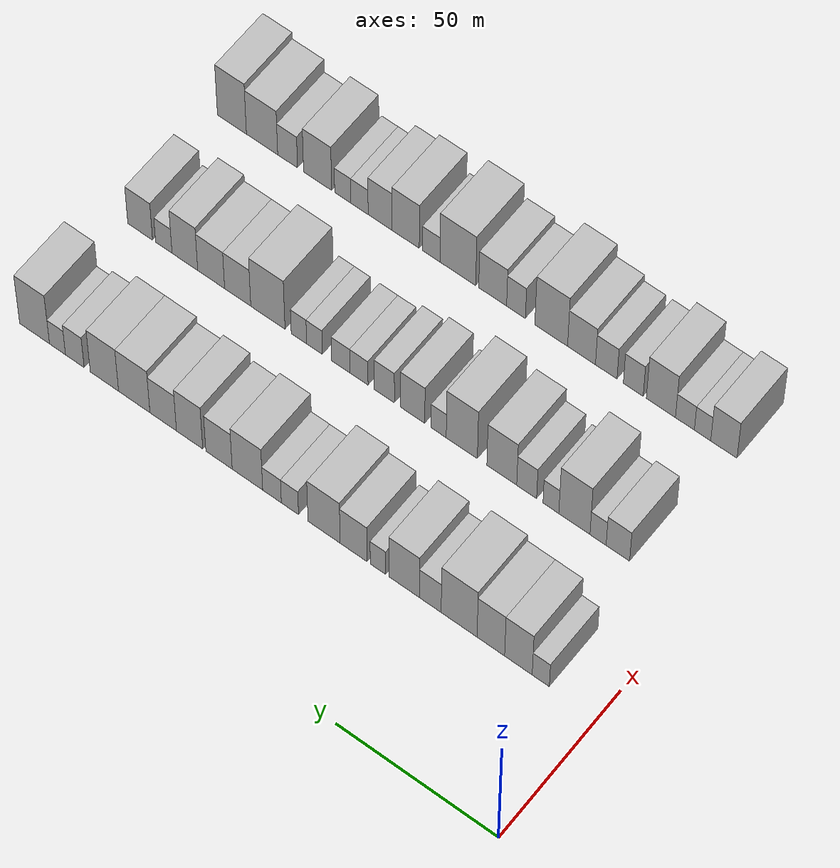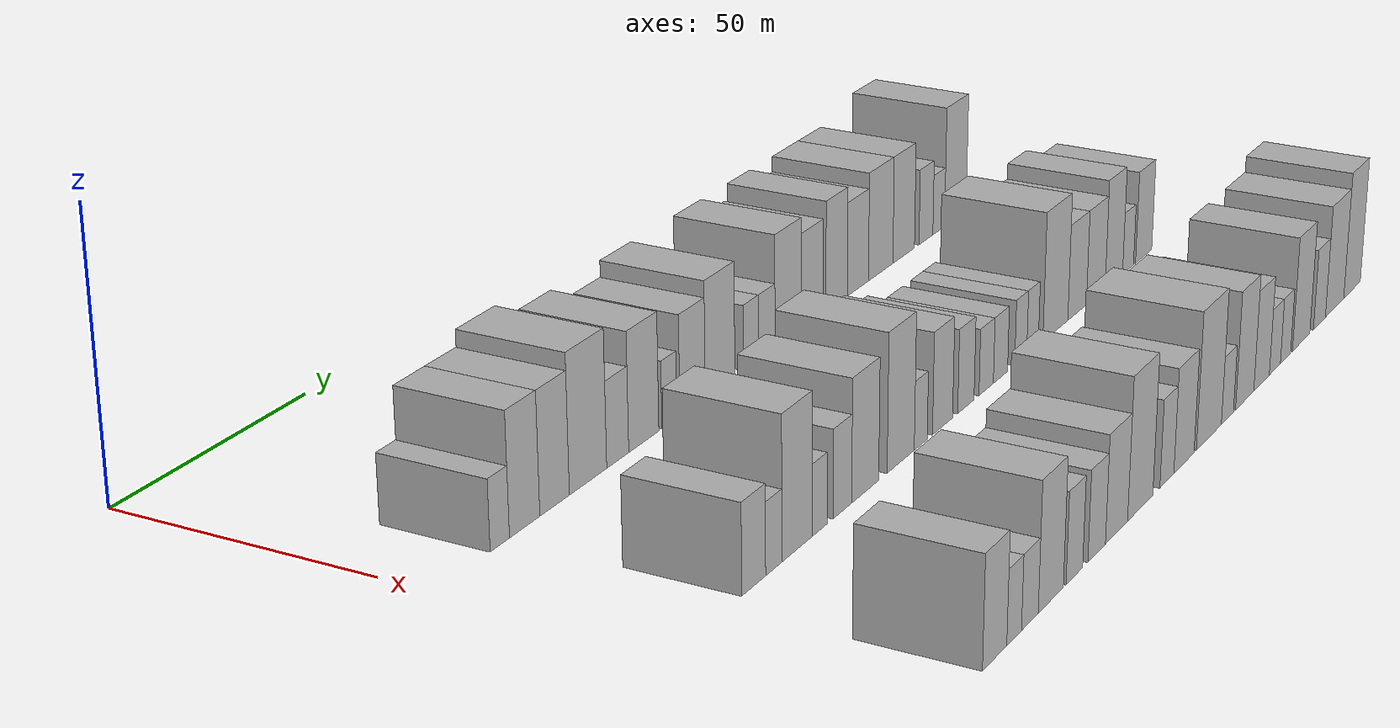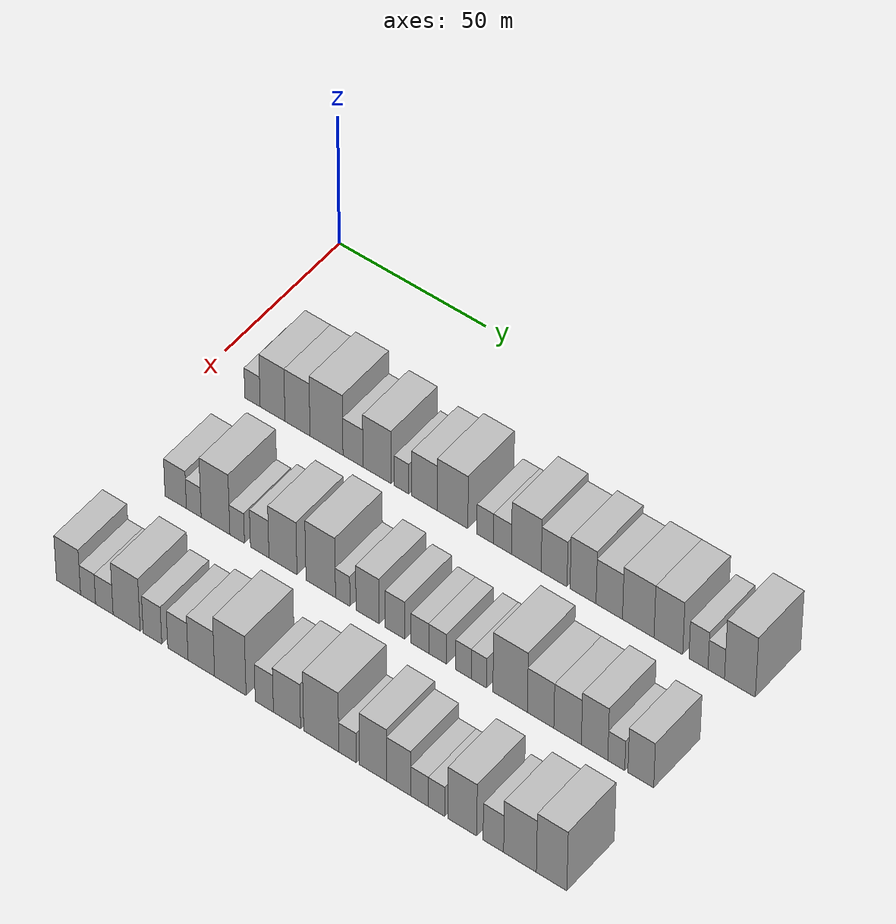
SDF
<sdf version="1.6">
 <world name="default">
  <model name="building_43">
   <static>1</static>
   <pose>50.0000 17.3146 0 0.000000 0.000000 0.000000</pose>
   <link name="link">
    <pose>0 0 6.00 0 0 0</pose>
    <collision name="collision"><geometry><box><size>20.0000 5.2675 12.0000</size></box></geometry></collision>
    <visual name="visual">
     <cast_shadows>0</cast_shadows>
     <geometry><box><size>20.0000 5.2675 12.0000</size></box></geometry>
     <material>
      <script>
       <uri>model://HANNAS_wall/materials/scripts</uri>
       <uri>model://HANNAS_wall/materials/textures</uri>
       <name>vrc/HANNAS_wall</name>
      </script>
     </material>
    </visual>
   </link>
  </model>
  <model name="building_44">
   <static>1</static>
   <pose>50.0000 24.1969 0 0.000000 0.000000 0.000000</pose>
   <link name="link">
    <pose>0 0 10.50 0 0 0</pose>
    <collision name="collision"><geometry><box><size>20.0000 8.4972 21.0000</size></box></geometry></collision>
    <visual name="visual">
     <cast_shadows>0</cast_shadows>
     <geometry><box><size>20.0000 8.4972 21.0000</size></box></geometry>
     <material>
      <script>
       <uri>model://HANNAS_wall/materials/scripts</uri>
       <uri>model://HANNAS_wall/materials/textures</uri>
       <name>vrc/HANNAS_wall</name>
      </script>
     </material>
    </visual>
   </link>
  </model>
  <model name="building_45">
   <static>1</static>
   <pose>50.0000 32.7116 0 0.000000 0.000000 0.000000</pose>
   <link name="link">
    <pose>0 0 10.50 0 0 0</pose>
    <collision name="collision"><geometry><box><size>20.0000 8.5323 21.0000</size></box></geometry></collision>
    <visual name="visual">
     <cast_shadows>0</cast_shadows>
     <geometry><box><size>20.0000 8.5323 21.0000</size></box></geometry>
     <material>
      <script>
       <uri>model://HANNAS_wall/materials/scripts</uri>
       <uri>model://HANNAS_wall/materials/textures</uri>
       <name>vrc/HANNAS_wall</name>
      </script>
     </material>
    </visual>
   </link>
  </model>
  <model name="building_46">
   <static>1</static>
   <pose>50.0000 42.5591 0 0.000000 0.000000 0.000000</pose>
   <link name="link">
    <pose>0 0 12.00 0 0 0</pose>
    <collision name="collision"><geometry><box><size>20.0000 11.1626 24.0000</size></box></geometry></collision>
    <visual name="visual">
     <cast_shadows>0</cast_shadows>
     <geometry><box><size>20.0000 11.1626 24.0000</size></box></geometry>
     <material>
      <script>
       <uri>model://HANNAS_wall/materials/scripts</uri>
       <uri>model://HANNAS_wall/materials/textures</uri>
       <name>vrc/HANNAS_wall</name>
      </script>
     </material>
    </visual>
   </link>
  </model>
  <model name="building_47">
   <static>1</static>
   <pose>50.0000 51.5305 0 0.000000 0.000000 0.000000</pose>
   <link name="link">
    <pose>0 0 7.50 0 0 0</pose>
    <collision name="collision"><geometry><box><size>20.0000 6.7802 15.0000</size></box></geometry></collision>
    <visual name="visual">
     <cast_shadows>0</cast_shadows>
     <geometry><box><size>20.0000 6.7802 15.0000</size></box></geometry>
     <material>
      <script>
       <uri>model://HANNAS_wall/materials/scripts</uri>
       <uri>model://HANNAS_wall/materials/textures</uri>
       <name>vrc/HANNAS_wall</name>
      </script>
     </material>
    </visual>
   </link>
  </model>
  <model name="building_48">
   <static>1</static>
   <pose>50.0000 59.6925 0 0.000000 0.000000 0.000000</pose>
   <link name="link">
    <pose>0 0 10.50 0 0 0</pose>
    <collision name="collision"><geometry><box><size>20.0000 9.5437 21.0000</size></box></geometry></collision>
    <visual name="visual">
     <cast_shadows>0</cast_shadows>
     <geometry><box><size>20.0000 9.5437 21.0000</size></box></geometry>
     <material>
      <script>
       <uri>model://HANNAS_wall/materials/scripts</uri>
       <uri>model://HANNAS_wall/materials/textures</uri>
       <name>vrc/HANNAS_wall</name>
      </script>
     </material>
    </visual>
   </link>
  </model>
  <model name="building_49">
   <static>1</static>
   <pose>50.0000 67.8998 0 0.000000 0.000000 0.000000</pose>
   <link name="link">
    <pose>0 0 6.00 0 0 0</pose>
    <collision name="collision"><geometry><box><size>20.0000 4.8709 12.0000</size></box></geometry></collision>
    <visual name="visual">
     <cast_shadows>0</cast_shadows>
     <geometry><box><size>20.0000 4.8709 12.0000</size></box></geometry>
     <material>
      <script>
       <uri>model://HANNAS_wall/materials/scripts</uri>
       <uri>model://HANNAS_wall/materials/textures</uri>
       <name>vrc/HANNAS_wall</name>
      </script>
     </material>
    </visual>
   </link>
  </model>
  <model name="building_50">
   <static>1</static>
   <pose>50.0000 75.5882 0 0.000000 0.000000 0.000000</pose>
   <link name="link">
    <pose>0 0 9.00 0 0 0</pose>
    <collision name="collision"><geometry><box><size>20.0000 8.5059 18.0000</size></box></geometry></collision>
    <visual name="visual">
     <cast_shadows>0</cast_shadows>
     <geometry><box><size>20.0000 8.5059 18.0000</size></box></geometry>
     <material>
      <script>
       <uri>model://HANNAS_wall/materials/scripts</uri>
       <uri>model://HANNAS_wall/materials/textures</uri>
       <name>vrc/HANNAS_wall</name>
      </script>
     </material>
    </visual>
   </link>
  </model>
  <model name="building_51">
   <static>1</static>
   <pose>50.0000 84.9459 0 0.000000 0.000000 0.000000</pose>
   <link name="link">
    <pose>0 0 10.50 0 0 0</pose>
    <collision name="collision"><geometry><box><size>20.0000 10.2094 21.0000</size></box></geometry></collision>
    <visual name="visual">
     <cast_shadows>0</cast_shadows>
     <geometry><box><size>20.0000 10.2094 21.0000</size></box></geometry>
     <material>
      <script>
       <uri>model://HANNAS_wall/materials/scripts</uri>
       <uri>model://HANNAS_wall/materials/textures</uri>
       <name>vrc/HANNAS_wall</name>
      </script>
     </material>
    </visual>
   </link>
  </model>
  <model name="building_52">
   <static>1</static>
   <pose>50.0000 95.7833 0 0.000000 0.000000 0.000000</pose>
   <link name="link">
    <pose>0 0 6.00 0 0 0</pose>
    <collision name="collision"><geometry><box><size>20.0000 5.4654 12.0000</size></box></geometry></collision>
    <visual name="visual">
     <cast_shadows>0</cast_shadows>
     <geometry><box><size>20.0000 5.4654 12.0000</size></box></geometry>
     <material>
      <script>
       <uri>model://HANNAS_wall/materials/scripts</uri>
       <uri>model://HANNAS_wall/materials/textures</uri>
       <name>vrc/HANNAS_wall</name>
      </script>
     </material>
    </visual>
   </link>
  </model>
  <model name="building_53">
   <static>1</static>
   <pose>50.0000 101.4940 0 0.000000 0.000000 0.000000</pose>
   <link name="link">
    <pose>0 0 6.00 0 0 0</pose>
    <collision name="collision"><geometry><box><size>20.0000 5.9561 12.0000</size></box></geometry></collision>
    <visual name="visual">
     <cast_shadows>0</cast_shadows>
     <geometry><box><size>20.0000 5.9561 12.0000</size></box></geometry>
     <material>
      <script>
       <uri>model://HANNAS_wall/materials/scripts</uri>
       <uri>model://HANNAS_wall/materials/textures</uri>
       <name>vrc/HANNAS_wall</name>
      </script>
     </material>
    </visual>
   </link>
  </model>
  <model name="building_54">
   <static>1</static>
   <pose>50.0000 109.3592 0 0.000000 0.000000 0.000000</pose>
   <link name="link">
    <pose>0 0 10.50 0 0 0</pose>
    <collision name="collision"><geometry><box><size>20.0000 9.7743 21.0000</size></box></geometry></collision>
    <visual name="visual">
     <cast_shadows>0</cast_shadows>
     <geometry><box><size>20.0000 9.7743 21.0000</size></box></geometry>
     <material>
      <script>
       <uri>model://HANNAS_wall/materials/scripts</uri>
       <uri>model://HANNAS_wall/materials/textures</uri>
       <name>vrc/HANNAS_wall</name>
      </script>
     </material>
    </visual>
   </link>
  </model>
  <model name="building_55">
   <static>1</static>
   <pose>50.0000 118.4897 0 0.000000 0.000000 0.000000</pose>
   <link name="link">
    <pose>0 0 9.00 0 0 0</pose>
    <collision name="collision"><geometry><box><size>20.0000 8.4868 18.0000</size></box></geometry></collision>
    <visual name="visual">
     <cast_shadows>0</cast_shadows>
     <geometry><box><size>20.0000 8.4868 18.0000</size></box></geometry>
     <material>
      <script>
       <uri>model://HANNAS_wall/materials/scripts</uri>
       <uri>model://HANNAS_wall/materials/textures</uri>
       <name>vrc/HANNAS_wall</name>
      </script>
     </material>
    </visual>
   </link>
  </model>
  <model name="building_56">
   <static>1</static>
   <pose>50.0000 127.9773 0 0.000000 0.000000 0.000000</pose>
   <link name="link">
    <pose>0 0 10.50 0 0 0</pose>
    <collision name="collision"><geometry><box><size>20.0000 8.4884 21.0000</size></box></geometry></collision>
    <visual name="visual">
     <cast_shadows>0</cast_shadows>
     <geometry><box><size>20.0000 8.4884 21.0000</size></box></geometry>
     <material>
      <script>
       <uri>model://HANNAS_wall/materials/scripts</uri>
       <uri>model://HANNAS_wall/materials/textures</uri>
       <name>vrc/HANNAS_wall</name>
      </script>
     </material>
    </visual>
   </link>
  </model>
  <model name="building_57">
   <static>1</static>
   <pose>50.0000 136.5265 0 0.000000 0.000000 0.000000</pose>
   <link name="link">
    <pose>0 0 9.00 0 0 0</pose>
    <collision name="collision"><geometry><box><size>20.0000 8.6100 18.0000</size></box></geometry></collision>
    <visual name="visual">
     <cast_shadows>0</cast_shadows>
     <geometry><box><size>20.0000 8.6100 18.0000</size></box></geometry>
     <material>
      <script>
       <uri>model://HANNAS_wall/materials/scripts</uri>
       <uri>model://HANNAS_wall/materials/textures</uri>
       <name>vrc/HANNAS_wall</name>
      </script>
     </material>
    </visual>
   </link>
  </model>
  <model name="building_58">
   <static>1</static>
   <pose>50.0000 145.9409 0 0.000000 0.000000 0.000000</pose>
   <link name="link">
    <pose>0 0 10.50 0 0 0</pose>
    <collision name="collision"><geometry><box><size>20.0000 10.2188 21.0000</size></box></geometry></collision>
    <visual name="visual">
     <cast_shadows>0</cast_shadows>
     <geometry><box><size>20.0000 10.2188 21.0000</size></box></geometry>
     <material>
      <script>
       <uri>model://HANNAS_wall/materials/scripts</uri>
       <uri>model://HANNAS_wall/materials/textures</uri>
       <name>vrc/HANNAS_wall</name>
      </script>
     </material>
    </visual>
   </link>
  </model>
  <model name="building_59">
   <static>1</static>
   <pose>50.0000 155.6911 0 0.000000 0.000000 0.000000</pose>
   <link name="link">
    <pose>0 0 10.50 0 0 0</pose>
    <collision name="collision"><geometry><box><size>20.0000 9.2816 21.0000</size></box></geometry></collision>
    <visual name="visual">
     <cast_shadows>0</cast_shadows>
     <geometry><box><size>20.0000 9.2816 21.0000</size></box></geometry>
     <material>
      <script>
       <uri>model://HANNAS_wall/materials/scripts</uri>
       <uri>model://HANNAS_wall/materials/textures</uri>
       <name>vrc/HANNAS_wall</name>
      </script>
     </material>
    </visual>
   </link>
  </model>
  <model name="building_60">
   <static>1</static>
   <pose>50.0000 165.3964 0 0.000000 0.000000 0.000000</pose>
   <link name="link">
    <pose>0 0 7.50 0 0 0</pose>
    <collision name="collision"><geometry><box><size>20.0000 6.1289 15.0000</size></box></geometry></collision>
    <visual name="visual">
     <cast_shadows>0</cast_shadows>
     <geometry><box><size>20.0000 6.1289 15.0000</size></box></geometry>
     <material>
      <script>
       <uri>model://HANNAS_wall/materials/scripts</uri>
       <uri>model://HANNAS_wall/materials/textures</uri>
       <name>vrc/HANNAS_wall</name>
      </script>
     </material>
    </visual>
   </link>
  </model>
  <model name="building_61">
   <static>1</static>
   <pose>50.0000 171.0979 0 0.000000 0.000000 0.000000</pose>
   <link name="link">
    <pose>0 0 6.00 0 0 0</pose>
    <collision name="collision"><geometry><box><size>20.0000 5.2742 12.0000</size></box></geometry></collision>
    <visual name="visual">
     <cast_shadows>0</cast_shadows>
     <geometry><box><size>20.0000 5.2742 12.0000</size></box></geometry>
     <material>
      <script>
       <uri>model://HANNAS_wall/materials/scripts</uri>
       <uri>model://HANNAS_wall/materials/textures</uri>
       <name>vrc/HANNAS_wall</name>
      </script>
     </material>
    </visual>
   </link>
  </model>
  <model name="building_62">
   <static>1</static>
   <pose>50.0000 178.6710 0 0.000000 0.000000 0.000000</pose>
   <link name="link">
    <pose>0 0 12.00 0 0 0</pose>
    <collision name="collision"><geometry><box><size>20.0000 9.8719 24.0000</size></box></geometry></collision>
    <visual name="visual">
     <cast_shadows>0</cast_shadows>
     <geometry><box><size>20.0000 9.8719 24.0000</size></box></geometry>
     <material>
      <script>
       <uri>model://HANNAS_wall/materials/scripts</uri>
       <uri>model://HANNAS_wall/materials/textures</uri>
       <name>vrc/HANNAS_wall</name>
      </script>
     </material>
    </visual>
   </link>
  </model>
  <model name="building_123">
   <static>1</static>
   <pose>90.0000 23.2948 0 0.000000 0.000000 0.000000</pose>
   <link name="link">
    <pose>0 0 7.50 0 0 0</pose>
    <collision name="collision"><geometry><box><size>20.0000 7.2804 15.0000</size></box></geometry></collision>
    <visual name="visual">
     <cast_shadows>0</cast_shadows>
     <geometry><box><size>20.0000 7.2804 15.0000</size></box></geometry>
     <material>
      <script>
       <uri>model://HANNAS_wall/materials/scripts</uri>
       <uri>model://HANNAS_wall/materials/textures</uri>
       <name>vrc/HANNAS_wall</name>
      </script>
     </material>
    </visual>
   </link>
  </model>
  <model name="building_124">
   <static>1</static>
   <pose>90.0000 29.4414 0 0.000000 0.000000 0.000000</pose>
   <link name="link">
    <pose>0 0 6.00 0 0 0</pose>
    <collision name="collision"><geometry><box><size>20.0000 5.0128 12.0000</size></box></geometry></collision>
    <visual name="visual">
     <cast_shadows>0</cast_shadows>
     <geometry><box><size>20.0000 5.0128 12.0000</size></box></geometry>
     <material>
      <script>
       <uri>model://HANNAS_wall/materials/scripts</uri>
       <uri>model://HANNAS_wall/materials/textures</uri>
       <name>vrc/HANNAS_wall</name>
      </script>
     </material>
    </visual>
   </link>
  </model>
  <model name="building_125">
   <static>1</static>
   <pose>90.0000 36.8077 0 0.000000 0.000000 0.000000</pose>
   <link name="link">
    <pose>0 0 12.00 0 0 0</pose>
    <collision name="collision"><geometry><box><size>20.0000 9.7198 24.0000</size></box></geometry></collision>
    <visual name="visual">
     <cast_shadows>0</cast_shadows>
     <geometry><box><size>20.0000 9.7198 24.0000</size></box></geometry>
     <material>
      <script>
       <uri>model://HANNAS_wall/materials/scripts</uri>
       <uri>model://HANNAS_wall/materials/textures</uri>
       <name>vrc/HANNAS_wall</name>
      </script>
     </material>
    </visual>
   </link>
  </model>
  <model name="building_126">
   <static>1</static>
   <pose>90.0000 44.1385 0 0.000000 0.000000 0.000000</pose>
   <link name="link">
    <pose>0 0 6.00 0 0 0</pose>
    <collision name="collision"><geometry><box><size>20.0000 4.9419 12.0000</size></box></geometry></collision>
    <visual name="visual">
     <cast_shadows>0</cast_shadows>
     <geometry><box><size>20.0000 4.9419 12.0000</size></box></geometry>
     <material>
      <script>
       <uri>model://HANNAS_wall/materials/scripts</uri>
       <uri>model://HANNAS_wall/materials/textures</uri>
       <name>vrc/HANNAS_wall</name>
      </script>
     </material>
    </visual>
   </link>
  </model>
  <model name="building_127">
   <static>1</static>
   <pose>90.0000 51.7272 0 0.000000 0.000000 0.000000</pose>
   <link name="link">
    <pose>0 0 7.50 0 0 0</pose>
    <collision name="collision"><geometry><box><size>20.0000 6.2356 15.0000</size></box></geometry></collision>
    <visual name="visual">
     <cast_shadows>0</cast_shadows>
     <geometry><box><size>20.0000 6.2356 15.0000</size></box></geometry>
     <material>
      <script>
       <uri>model://HANNAS_wall/materials/scripts</uri>
       <uri>model://HANNAS_wall/materials/textures</uri>
       <name>vrc/HANNAS_wall</name>
      </script>
     </material>
    </visual>
   </link>
  </model>
  <model name="building_128">
   <static>1</static>
   <pose>90.0000 59.5458 0 0.000000 0.000000 0.000000</pose>
   <link name="link">
    <pose>0 0 10.50 0 0 0</pose>
    <collision name="collision"><geometry><box><size>20.0000 9.4016 21.0000</size></box></geometry></collision>
    <visual name="visual">
     <cast_shadows>0</cast_shadows>
     <geometry><box><size>20.0000 9.4016 21.0000</size></box></geometry>
     <material>
      <script>
       <uri>model://HANNAS_wall/materials/scripts</uri>
       <uri>model://HANNAS_wall/materials/textures</uri>
       <name>vrc/HANNAS_wall</name>
      </script>
     </material>
    </visual>
   </link>
  </model>
  <model name="building_129">
   <static>1</static>
   <pose>90.0000 72.1770 0 0.000000 0.000000 0.000000</pose>
   <link name="link">
    <pose>0 0 12.00 0 0 0</pose>
    <collision name="collision"><geometry><box><size>20.0000 9.8608 24.0000</size></box></geometry></collision>
    <visual name="visual">
     <cast_shadows>0</cast_shadows>
     <geometry><box><size>20.0000 9.8608 24.0000</size></box></geometry>
     <material>
      <script>
       <uri>model://HANNAS_wall/materials/scripts</uri>
       <uri>model://HANNAS_wall/materials/textures</uri>
       <name>vrc/HANNAS_wall</name>
      </script>
     </material>
    </visual>
   </link>
  </model>
  <model name="building_130">
   <static>1</static>
   <pose>90.0000 79.5146 0 0.000000 0.000000 0.000000</pose>
   <link name="link">
    <pose>0 0 6.00 0 0 0</pose>
    <collision name="collision"><geometry><box><size>20.0000 4.8144 12.0000</size></box></geometry></collision>
    <visual name="visual">
     <cast_shadows>0</cast_shadows>
     <geometry><box><size>20.0000 4.8144 12.0000</size></box></geometry>
     <material>
      <script>
       <uri>model://HANNAS_wall/materials/scripts</uri>
       <uri>model://HANNAS_wall/materials/textures</uri>
       <name>vrc/HANNAS_wall</name>
      </script>
     </material>
    </visual>
   </link>
  </model>
  <model name="building_131">
   <static>1</static>
   <pose>90.0000 87.7689 0 0.000000 0.000000 0.000000</pose>
   <link name="link">
    <pose>0 0 9.00 0 0 0</pose>
    <collision name="collision"><geometry><box><size>20.0000 7.6941 18.0000</size></box></geometry></collision>
    <visual name="visual">
     <cast_shadows>0</cast_shadows>
     <geometry><box><size>20.0000 7.6941 18.0000</size></box></geometry>
     <material>
      <script>
       <uri>model://HANNAS_wall/materials/scripts</uri>
       <uri>model://HANNAS_wall/materials/textures</uri>
       <name>vrc/HANNAS_wall</name>
      </script>
     </material>
    </visual>
   </link>
  </model>
  <model name="building_132">
   <static>1</static>
   <pose>90.0000 96.8347 0 0.000000 0.000000 0.000000</pose>
   <link name="link">
    <pose>0 0 7.50 0 0 0</pose>
    <collision name="collision"><geometry><box><size>20.0000 6.4374 15.0000</size></box></geometry></collision>
    <visual name="visual">
     <cast_shadows>0</cast_shadows>
     <geometry><box><size>20.0000 6.4374 15.0000</size></box></geometry>
     <material>
      <script>
       <uri>model://HANNAS_wall/materials/scripts</uri>
       <uri>model://HANNAS_wall/materials/textures</uri>
       <name>vrc/HANNAS_wall</name>
      </script>
     </material>
    </visual>
   </link>
  </model>
  <model name="building_133">
   <static>1</static>
   <pose>90.0000 104.9692 0 0.000000 0.000000 0.000000</pose>
   <link name="link">
    <pose>0 0 6.00 0 0 0</pose>
    <collision name="collision"><geometry><box><size>20.0000 5.8316 12.0000</size></box></geometry></collision>
    <visual name="visual">
     <cast_shadows>0</cast_shadows>
     <geometry><box><size>20.0000 5.8316 12.0000</size></box></geometry>
     <material>
      <script>
       <uri>model://HANNAS_wall/materials/scripts</uri>
       <uri>model://HANNAS_wall/materials/textures</uri>
       <name>vrc/HANNAS_wall</name>
      </script>
     </material>
    </visual>
   </link>
  </model>
  <model name="building_134">
   <static>1</static>
   <pose>90.0000 110.8196 0 0.000000 0.000000 0.000000</pose>
   <link name="link">
    <pose>0 0 6.00 0 0 0</pose>
    <collision name="collision"><geometry><box><size>20.0000 5.8692 12.0000</size></box></geometry></collision>
    <visual name="visual">
     <cast_shadows>0</cast_shadows>
     <geometry><box><size>20.0000 5.8692 12.0000</size></box></geometry>
     <material>
      <script>
       <uri>model://HANNAS_wall/materials/scripts</uri>
       <uri>model://HANNAS_wall/materials/textures</uri>
       <name>vrc/HANNAS_wall</name>
      </script>
     </material>
    </visual>
   </link>
  </model>
  <model name="building_135">
   <static>1</static>
   <pose>90.0000 119.2998 0 0.000000 0.000000 0.000000</pose>
   <link name="link">
    <pose>0 0 6.00 0 0 0</pose>
    <collision name="collision"><geometry><box><size>20.0000 5.0912 12.0000</size></box></geometry></collision>
    <visual name="visual">
     <cast_shadows>0</cast_shadows>
     <geometry><box><size>20.0000 5.0912 12.0000</size></box></geometry>
     <material>
      <script>
       <uri>model://HANNAS_wall/materials/scripts</uri>
       <uri>model://HANNAS_wall/materials/textures</uri>
       <name>vrc/HANNAS_wall</name>
      </script>
     </material>
    </visual>
   </link>
  </model>
  <model name="building_136">
   <static>1</static>
   <pose>90.0000 124.3524 0 0.000000 0.000000 0.000000</pose>
   <link name="link">
    <pose>0 0 6.00 0 0 0</pose>
    <collision name="collision"><geometry><box><size>20.0000 5.0139 12.0000</size></box></geometry></collision>
    <visual name="visual">
     <cast_shadows>0</cast_shadows>
     <geometry><box><size>20.0000 5.0139 12.0000</size></box></geometry>
     <material>
      <script>
       <uri>model://HANNAS_wall/materials/scripts</uri>
       <uri>model://HANNAS_wall/materials/textures</uri>
       <name>vrc/HANNAS_wall</name>
      </script>
     </material>
    </visual>
   </link>
  </model>
  <model name="building_137">
   <static>1</static>
   <pose>90.0000 134.4356 0 0.000000 0.000000 0.000000</pose>
   <link name="link">
    <pose>0 0 12.00 0 0 0</pose>
    <collision name="collision"><geometry><box><size>20.0000 11.1525 24.0000</size></box></geometry></collision>
    <visual name="visual">
     <cast_shadows>0</cast_shadows>
     <geometry><box><size>20.0000 11.1525 24.0000</size></box></geometry>
     <material>
      <script>
       <uri>model://HANNAS_wall/materials/scripts</uri>
       <uri>model://HANNAS_wall/materials/textures</uri>
       <name>vrc/HANNAS_wall</name>
      </script>
     </material>
    </visual>
   </link>
  </model>
  <model name="building_138">
   <static>1</static>
   <pose>90.0000 144.2898 0 0.000000 0.000000 0.000000</pose>
   <link name="link">
    <pose>0 0 9.00 0 0 0</pose>
    <collision name="collision"><geometry><box><size>20.0000 8.5558 18.0000</size></box></geometry></collision>
    <visual name="visual">
     <cast_shadows>0</cast_shadows>
     <geometry><box><size>20.0000 8.5558 18.0000</size></box></geometry>
     <material>
      <script>
       <uri>model://HANNAS_wall/materials/scripts</uri>
       <uri>model://HANNAS_wall/materials/textures</uri>
       <name>vrc/HANNAS_wall</name>
      </script>
     </material>
    </visual>
   </link>
  </model>
  <model name="building_139">
   <static>1</static>
   <pose>90.0000 152.9894 0 0.000000 0.000000 0.000000</pose>
   <link name="link">
    <pose>0 0 9.00 0 0 0</pose>
    <collision name="collision"><geometry><box><size>20.0000 8.8433 18.0000</size></box></geometry></collision>
    <visual name="visual">
     <cast_shadows>0</cast_shadows>
     <geometry><box><size>20.0000 8.8433 18.0000</size></box></geometry>
     <material>
      <script>
       <uri>model://HANNAS_wall/materials/scripts</uri>
       <uri>model://HANNAS_wall/materials/textures</uri>
       <name>vrc/HANNAS_wall</name>
      </script>
     </material>
    </visual>
   </link>
  </model>
  <model name="building_140">
   <static>1</static>
   <pose>90.0000 161.6472 0 0.000000 0.000000 0.000000</pose>
   <link name="link">
    <pose>0 0 10.50 0 0 0</pose>
    <collision name="collision"><geometry><box><size>20.0000 8.4724 21.0000</size></box></geometry></collision>
    <visual name="visual">
     <cast_shadows>0</cast_shadows>
     <geometry><box><size>20.0000 8.4724 21.0000</size></box></geometry>
     <material>
      <script>
       <uri>model://HANNAS_wall/materials/scripts</uri>
       <uri>model://HANNAS_wall/materials/textures</uri>
       <name>vrc/HANNAS_wall</name>
      </script>
     </material>
    </visual>
   </link>
  </model>
  <model name="building_141">
   <static>1</static>
   <pose>90.0000 168.5991 0 0.000000 0.000000 0.000000</pose>
   <link name="link">
    <pose>0 0 6.00 0 0 0</pose>
    <collision name="collision"><geometry><box><size>20.0000 5.4315 12.0000</size></box></geometry></collision>
    <visual name="visual">
     <cast_shadows>0</cast_shadows>
     <geometry><box><size>20.0000 5.4315 12.0000</size></box></geometry>
     <material>
      <script>
       <uri>model://HANNAS_wall/materials/scripts</uri>
       <uri>model://HANNAS_wall/materials/textures</uri>
       <name>vrc/HANNAS_wall</name>
      </script>
     </material>
    </visual>
   </link>
  </model>
  <model name="building_142">
   <static>1</static>
   <pose>90.0000 176.4196 0 0.000000 0.000000 0.000000</pose>
   <link name="link">
    <pose>0 0 9.00 0 0 0</pose>
    <collision name="collision"><geometry><box><size>20.0000 8.2095 18.0000</size></box></geometry></collision>
    <visual name="visual">
     <cast_shadows>0</cast_shadows>
     <geometry><box><size>20.0000 8.2095 18.0000</size></box></geometry>
     <material>
      <script>
       <uri>model://HANNAS_wall/materials/scripts</uri>
       <uri>model://HANNAS_wall/materials/textures</uri>
       <name>vrc/HANNAS_wall</name>
      </script>
     </material>
    </visual>
   </link>
  </model>
  <model name="building_199">
   <static>1</static>
   <pose>130.0000 19.6393 0 0.000000 0.000000 0.000000</pose>
   <link name="link">
    <pose>0 0 9.00 0 0 0</pose>
    <collision name="collision"><geometry><box><size>20.0000 8.1835 18.0000</size></box></geometry></collision>
    <visual name="visual">
     <cast_shadows>0</cast_shadows>
     <geometry><box><size>20.0000 8.1835 18.0000</size></box></geometry>
     <material>
      <script>
       <uri>model://HANNAS_wall/materials/scripts</uri>
       <uri>model://HANNAS_wall/materials/textures</uri>
       <name>vrc/HANNAS_wall</name>
      </script>
     </material>
    </visual>
   </link>
  </model>
  <model name="building_200">
   <static>1</static>
   <pose>130.0000 26.2807 0 0.000000 0.000000 0.000000</pose>
   <link name="link">
    <pose>0 0 6.00 0 0 0</pose>
    <collision name="collision"><geometry><box><size>20.0000 5.0993 12.0000</size></box></geometry></collision>
    <visual name="visual">
     <cast_shadows>0</cast_shadows>
     <geometry><box><size>20.0000 5.0993 12.0000</size></box></geometry>
     <material>
      <script>
       <uri>model://HANNAS_wall/materials/scripts</uri>
       <uri>model://HANNAS_wall/materials/textures</uri>
       <name>vrc/HANNAS_wall</name>
      </script>
     </material>
    </visual>
   </link>
  </model>
  <model name="building_201">
   <static>1</static>
   <pose>130.0000 31.7834 0 0.000000 0.000000 0.000000</pose>
   <link name="link">
    <pose>0 0 6.00 0 0 0</pose>
    <collision name="collision"><geometry><box><size>20.0000 5.9061 12.0000</size></box></geometry></collision>
    <visual name="visual">
     <cast_shadows>0</cast_shadows>
     <geometry><box><size>20.0000 5.9061 12.0000</size></box></geometry>
     <material>
      <script>
       <uri>model://HANNAS_wall/materials/scripts</uri>
       <uri>model://HANNAS_wall/materials/textures</uri>
       <name>vrc/HANNAS_wall</name>
      </script>
     </material>
    </visual>
   </link>
  </model>
  <model name="building_202">
   <static>1</static>
   <pose>130.0000 39.3027 0 0.000000 0.000000 0.000000</pose>
   <link name="link">
    <pose>0 0 10.50 0 0 0</pose>
    <collision name="collision"><geometry><box><size>20.0000 9.1324 21.0000</size></box></geometry></collision>
    <visual name="visual">
     <cast_shadows>0</cast_shadows>
     <geometry><box><size>20.0000 9.1324 21.0000</size></box></geometry>
     <material>
      <script>
       <uri>model://HANNAS_wall/materials/scripts</uri>
       <uri>model://HANNAS_wall/materials/textures</uri>
       <name>vrc/HANNAS_wall</name>
      </script>
     </material>
    </visual>
   </link>
  </model>
  <model name="building_203">
   <static>1</static>
   <pose>130.0000 47.9888 0 0.000000 0.000000 0.000000</pose>
   <link name="link">
    <pose>0 0 7.50 0 0 0</pose>
    <collision name="collision"><geometry><box><size>20.0000 6.2398 15.0000</size></box></geometry></collision>
    <visual name="visual">
     <cast_shadows>0</cast_shadows>
     <geometry><box><size>20.0000 6.2398 15.0000</size></box></geometry>
     <material>
      <script>
       <uri>model://HANNAS_wall/materials/scripts</uri>
       <uri>model://HANNAS_wall/materials/textures</uri>
       <name>vrc/HANNAS_wall</name>
      </script>
     </material>
    </visual>
   </link>
  </model>
  <model name="building_204">
   <static>1</static>
   <pose>130.0000 56.5098 0 0.000000 0.000000 0.000000</pose>
   <link name="link">
    <pose>0 0 7.50 0 0 0</pose>
    <collision name="collision"><geometry><box><size>20.0000 6.8021 15.0000</size></box></geometry></collision>
    <visual name="visual">
     <cast_shadows>0</cast_shadows>
     <geometry><box><size>20.0000 6.8021 15.0000</size></box></geometry>
     <material>
      <script>
       <uri>model://HANNAS_wall/materials/scripts</uri>
       <uri>model://HANNAS_wall/materials/textures</uri>
       <name>vrc/HANNAS_wall</name>
      </script>
     </material>
    </visual>
   </link>
  </model>
  <model name="building_205">
   <static>1</static>
   <pose>130.0000 64.3341 0 0.000000 0.000000 0.000000</pose>
   <link name="link">
    <pose>0 0 9.00 0 0 0</pose>
    <collision name="collision"><geometry><box><size>20.0000 8.8466 18.0000</size></box></geometry></collision>
    <visual name="visual">
     <cast_shadows>0</cast_shadows>
     <geometry><box><size>20.0000 8.8466 18.0000</size></box></geometry>
     <material>
      <script>
       <uri>model://HANNAS_wall/materials/scripts</uri>
       <uri>model://HANNAS_wall/materials/textures</uri>
       <name>vrc/HANNAS_wall</name>
      </script>
     </material>
    </visual>
   </link>
  </model>
  <model name="building_206">
   <static>1</static>
   <pose>130.0000 73.9801 0 0.000000 0.000000 0.000000</pose>
   <link name="link">
    <pose>0 0 12.00 0 0 0</pose>
    <collision name="collision"><geometry><box><size>20.0000 10.4453 24.0000</size></box></geometry></collision>
    <visual name="visual">
     <cast_shadows>0</cast_shadows>
     <geometry><box><size>20.0000 10.4453 24.0000</size></box></geometry>
     <material>
      <script>
       <uri>model://HANNAS_wall/materials/scripts</uri>
       <uri>model://HANNAS_wall/materials/textures</uri>
       <name>vrc/HANNAS_wall</name>
      </script>
     </material>
    </visual>
   </link>
  </model>
  <model name="building_207">
   <static>1</static>
   <pose>130.0000 85.2124 0 0.000000 0.000000 0.000000</pose>
   <link name="link">
    <pose>0 0 7.50 0 0 0</pose>
    <collision name="collision"><geometry><box><size>20.0000 6.0193 15.0000</size></box></geometry></collision>
    <visual name="visual">
     <cast_shadows>0</cast_shadows>
     <geometry><box><size>20.0000 6.0193 15.0000</size></box></geometry>
     <material>
      <script>
       <uri>model://HANNAS_wall/materials/scripts</uri>
       <uri>model://HANNAS_wall/materials/textures</uri>
       <name>vrc/HANNAS_wall</name>
      </script>
     </material>
    </visual>
   </link>
  </model>
  <model name="building_208">
   <static>1</static>
   <pose>130.0000 92.6941 0 0.000000 0.000000 0.000000</pose>
   <link name="link">
    <pose>0 0 9.00 0 0 0</pose>
    <collision name="collision"><geometry><box><size>20.0000 8.9441 18.0000</size></box></geometry></collision>
    <visual name="visual">
     <cast_shadows>0</cast_shadows>
     <geometry><box><size>20.0000 8.9441 18.0000</size></box></geometry>
     <material>
      <script>
       <uri>model://HANNAS_wall/materials/scripts</uri>
       <uri>model://HANNAS_wall/materials/textures</uri>
       <name>vrc/HANNAS_wall</name>
      </script>
     </material>
    </visual>
   </link>
  </model>
  <model name="building_209">
   <static>1</static>
   <pose>130.0000 103.9205 0 0.000000 0.000000 0.000000</pose>
   <link name="link">
    <pose>0 0 12.00 0 0 0</pose>
    <collision name="collision"><geometry><box><size>20.0000 11.5086 24.0000</size></box></geometry></collision>
    <visual name="visual">
     <cast_shadows>0</cast_shadows>
     <geometry><box><size>20.0000 11.5086 24.0000</size></box></geometry>
     <material>
      <script>
       <uri>model://HANNAS_wall/materials/scripts</uri>
       <uri>model://HANNAS_wall/materials/textures</uri>
       <name>vrc/HANNAS_wall</name>
      </script>
     </material>
    </visual>
   </link>
  </model>
  <model name="building_210">
   <static>1</static>
   <pose>130.0000 112.5367 0 0.000000 0.000000 0.000000</pose>
   <link name="link">
    <pose>0 0 6.00 0 0 0</pose>
    <collision name="collision"><geometry><box><size>20.0000 5.7238 12.0000</size></box></geometry></collision>
    <visual name="visual">
     <cast_shadows>0</cast_shadows>
     <geometry><box><size>20.0000 5.7238 12.0000</size></box></geometry>
     <material>
      <script>
       <uri>model://HANNAS_wall/materials/scripts</uri>
       <uri>model://HANNAS_wall/materials/textures</uri>
       <name>vrc/HANNAS_wall</name>
      </script>
     </material>
    </visual>
   </link>
  </model>
  <model name="building_211">
   <static>1</static>
   <pose>130.0000 120.8432 0 0.000000 0.000000 0.000000</pose>
   <link name="link">
    <pose>0 0 10.50 0 0 0</pose>
    <collision name="collision"><geometry><box><size>20.0000 8.8892 21.0000</size></box></geometry></collision>
    <visual name="visual">
     <cast_shadows>0</cast_shadows>
     <geometry><box><size>20.0000 8.8892 21.0000</size></box></geometry>
     <material>
      <script>
       <uri>model://HANNAS_wall/materials/scripts</uri>
       <uri>model://HANNAS_wall/materials/textures</uri>
       <name>vrc/HANNAS_wall</name>
      </script>
     </material>
    </visual>
   </link>
  </model>
  <model name="building_212">
   <static>1</static>
   <pose>130.0000 129.1672 0 0.000000 0.000000 0.000000</pose>
   <link name="link">
    <pose>0 0 9.00 0 0 0</pose>
    <collision name="collision"><geometry><box><size>20.0000 7.7588 18.0000</size></box></geometry></collision>
    <visual name="visual">
     <cast_shadows>0</cast_shadows>
     <geometry><box><size>20.0000 7.7588 18.0000</size></box></geometry>
     <material>
      <script>
       <uri>model://HANNAS_wall/materials/scripts</uri>
       <uri>model://HANNAS_wall/materials/textures</uri>
       <name>vrc/HANNAS_wall</name>
      </script>
     </material>
    </visual>
   </link>
  </model>
  <model name="building_213">
   <static>1</static>
   <pose>130.0000 135.8703 0 0.000000 0.000000 0.000000</pose>
   <link name="link">
    <pose>0 0 6.00 0 0 0</pose>
    <collision name="collision"><geometry><box><size>20.0000 5.6474 12.0000</size></box></geometry></collision>
    <visual name="visual">
     <cast_shadows>0</cast_shadows>
     <geometry><box><size>20.0000 5.6474 12.0000</size></box></geometry>
     <material>
      <script>
       <uri>model://HANNAS_wall/materials/scripts</uri>
       <uri>model://HANNAS_wall/materials/textures</uri>
       <name>vrc/HANNAS_wall</name>
      </script>
     </material>
    </visual>
   </link>
  </model>
  <model name="building_214">
   <static>1</static>
   <pose>130.0000 141.3489 0 0.000000 0.000000 0.000000</pose>
   <link name="link">
    <pose>0 0 6.00 0 0 0</pose>
    <collision name="collision"><geometry><box><size>20.0000 5.3098 12.0000</size></box></geometry></collision>
    <visual name="visual">
     <cast_shadows>0</cast_shadows>
     <geometry><box><size>20.0000 5.3098 12.0000</size></box></geometry>
     <material>
      <script>
       <uri>model://HANNAS_wall/materials/scripts</uri>
       <uri>model://HANNAS_wall/materials/textures</uri>
       <name>vrc/HANNAS_wall</name>
      </script>
     </material>
    </visual>
   </link>
  </model>
  <model name="building_215">
   <static>1</static>
   <pose>130.0000 149.6297 0 0.000000 0.000000 0.000000</pose>
   <link name="link">
    <pose>0 0 10.50 0 0 0</pose>
    <collision name="collision"><geometry><box><size>20.0000 9.2516 21.0000</size></box></geometry></collision>
    <visual name="visual">
     <cast_shadows>0</cast_shadows>
     <geometry><box><size>20.0000 9.2516 21.0000</size></box></geometry>
     <material>
      <script>
       <uri>model://HANNAS_wall/materials/scripts</uri>
       <uri>model://HANNAS_wall/materials/textures</uri>
       <name>vrc/HANNAS_wall</name>
      </script>
     </material>
    </visual>
   </link>
  </model>
  <model name="building_216">
   <static>1</static>
   <pose>130.0000 159.5303 0 0.000000 0.000000 0.000000</pose>
   <link name="link">
    <pose>0 0 7.50 0 0 0</pose>
    <collision name="collision"><geometry><box><size>20.0000 6.5498 15.0000</size></box></geometry></collision>
    <visual name="visual">
     <cast_shadows>0</cast_shadows>
     <geometry><box><size>20.0000 6.5498 15.0000</size></box></geometry>
     <material>
      <script>
       <uri>model://HANNAS_wall/materials/scripts</uri>
       <uri>model://HANNAS_wall/materials/textures</uri>
       <name>vrc/HANNAS_wall</name>
      </script>
     </material>
    </visual>
   </link>
  </model>
  <model name="building_217">
   <static>1</static>
   <pose>130.0000 168.0009 0 0.000000 0.000000 0.000000</pose>
   <link name="link">
    <pose>0 0 10.50 0 0 0</pose>
    <collision name="collision"><geometry><box><size>20.0000 10.3914 21.0000</size></box></geometry></collision>
    <visual name="visual">
     <cast_shadows>0</cast_shadows>
     <geometry><box><size>20.0000 10.3914 21.0000</size></box></geometry>
     <material>
      <script>
       <uri>model://HANNAS_wall/materials/scripts</uri>
       <uri>model://HANNAS_wall/materials/textures</uri>
       <name>vrc/HANNAS_wall</name>
      </script>
     </material>
    </visual>
   </link>
  </model>
  <model name="building_218">
   <static>1</static>
   <pose>130.0000 178.0249 0 0.000000 0.000000 0.000000</pose>
   <link name="link">
    <pose>0 0 12.00 0 0 0</pose>
    <collision name="collision"><geometry><box><size>20.0000 9.6565 24.0000</size></box></geometry></collision>
    <visual name="visual">
     <cast_shadows>0</cast_shadows>
     <geometry><box><size>20.0000 9.6565 24.0000</size></box></geometry>
     <material>
      <script>
       <uri>model://HANNAS_wall/materials/scripts</uri>
       <uri>model://HANNAS_wall/materials/textures</uri>
       <name>vrc/HANNAS_wall</name>
      </script>
     </material>
    </visual>
   </link>
  </model>
 </world>
</sdf>
